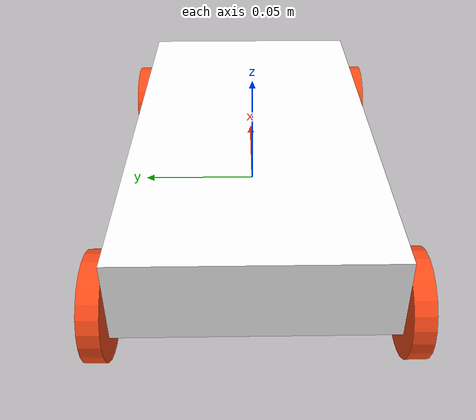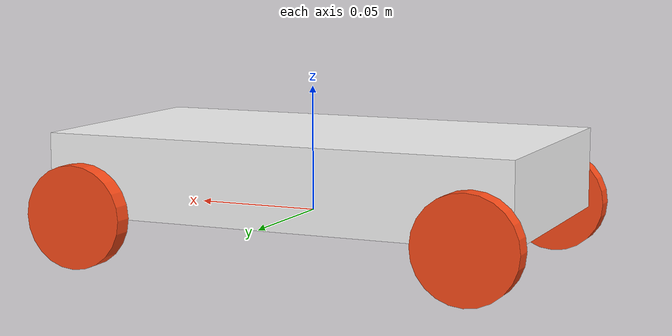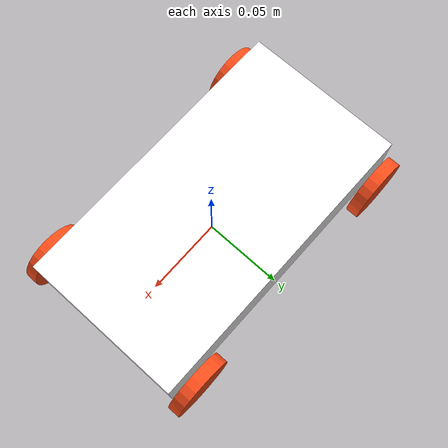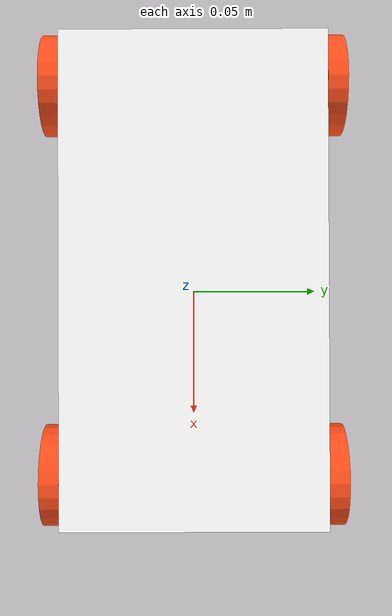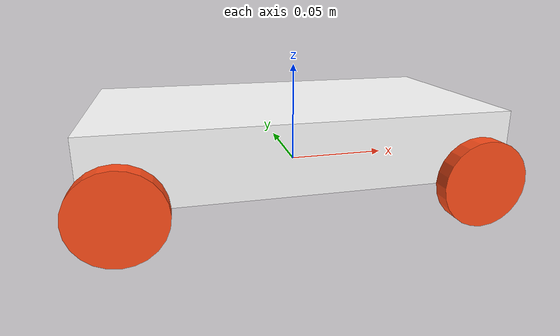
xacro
<?xml version="1.0"?>
<robot xmlns:xacro="http://www.ros.org/wiki/xacro">

    <xacro:include filename="inertial_macros.xacro"/>

    <material name="white">
        <color rgba="1 1 1 1" />
    </material>

    <material name="orange">
        <color rgba="1 0.3 0.1 1" />
    </material>

    <material name="blue">
        <color rgba="0.2 0.2 1 1" />
    </material>

    <material name="black">
        <color rgba="0 0 0 1" />
    </material>

    <!--BASE LINK-->
    <link name="base_link">
        <origin xyz="0 0 0.5" />
    </link>

    <!--CHASSIS LINK-->
    <joint name="chassis_joint" type="fixed">
        <parent link="base_link"/>
        <child link="chassis" />
        <origin xyz="-0.1 0 0" />
    </joint>

    <link name="chassis">
        <visual>
            <origin xyz="0.09525 0 0.01625"/>
            <geometry>
                <box size=".1905 0.1025 0.0325"/>
            </geometry>
            <material name="white"/>
        </visual>
        <collision>
            <origin xyz="0.09525 0 0.01625"/>
            <geometry>
                <box size="0.1905 0.1025 0.0325"/>
            </geometry>
        </collision>
        <xacro:inertial_box mass="1.2" x="0.1905" y="0.1025" z="0.0325">
            <origin xyz="0.09525 0 0.01625" rpy="0 0 0"/>
        </xacro:inertial_box>
    </link>

    <!--FRONT LEFT WHEEL LINK-->
    <joint name="front_left_wheel_joint" type="continuous">
        <parent link="base_link"/>
        <child link="wheel_FL"/>
        <origin xyz="0.075 0.057 0.001" rpy="-${pi/2} 0 0"/>
        <axis xyz="0 0 1"/>
    </joint>

    <link name="wheel_FL">
        <visual>
            <geometry>
                <cylinder radius="0.0205" length="0.008"/>
            </geometry>
            <material name="orange"/>
        </visual>
        <collision>
            <geometry>
                <cylinder radius="0.0205" length="0.008"/>
            </geometry>
        </collision>
        <xacro:inertial_cylinder mass="0.023" radius="0.0205" length="0.008">
            <origin xyz="0 0 0" rpy="0 0 0"/>
        </xacro:inertial_cylinder>
    </link>

    <!--FRONT RIGHT WHEEL LINK-->
    <joint name="front_right_wheel_joint" type="continuous">
        <parent link="base_link"/>
        <child link="wheel_FR"/>
        <origin xyz="0.075 -0.057 0.001" rpy="${pi/2} 0 0"/>
        <axis xyz="0 0 -1"/>
    </joint>

    <link name="wheel_FR">
        <visual>
            <geometry>
                <cylinder radius="0.0205" length="0.008"/>
            </geometry>
            <material name="orange"/>
        </visual>
        <collision>
            <geometry>
                <cylinder radius="0.0205" length="0.008"/>
            </geometry>
        </collision>
        <xacro:inertial_cylinder mass="0.023" radius="0.0205" length="0.008">
            <origin xyz="0 0 0" rpy="0 0 0"/>
        </xacro:inertial_cylinder>
    </link>

    <!--BACK LEFT WHEEL LINK-->
    <joint name="back_left_wheel_joint" type="continuous">
        <parent link="base_link"/>
        <child link="wheel_BL"/>
        <origin xyz="-0.085 0.057 0.001" rpy="-${pi/2} 0 0"/>
        <axis xyz="0 0 1"/>
    </joint>

    <link name="wheel_BL">
        <visual>
            <geometry>
                <cylinder radius="0.0205" length="0.008"/>
            </geometry>
            <material name="orange"/>
        </visual>
        <collision>
            <geometry>
                <cylinder radius="0.0205" length="0.008"/>
            </geometry>
        </collision>
        <xacro:inertial_cylinder mass="0.023" radius="0.0205" length="0.008">
            <origin xyz="0 0 0" rpy="0 0 0"/>
        </xacro:inertial_cylinder>
    </link>

    <!--BACK RIGHT WHEEL LINK-->
    <joint name="back_right_wheel_joint" type="continuous">
        <parent link="base_link"/>
        <child link="wheel_BR"/>
        <origin xyz="-0.085 -0.057 0.001" rpy="${pi/2} 0 0"/>
        <axis xyz="0 0 -1"/>
    </joint>

    <link name="wheel_BR">
        <visual>
            <geometry>
                <cylinder radius="0.0205" length="0.008"/>
            </geometry>
            <material name="orange"/>
        </visual>
        <collision>
            <geometry>
                <cylinder radius="0.0205" length="0.008"/>
            </geometry>
        </collision>
        <xacro:inertial_cylinder mass="0.023" radius="0.0205" length="0.008">
            <origin xyz="0 0 0" rpy="0 0 0"/>
        </xacro:inertial_cylinder>
    </link>

</robot>
